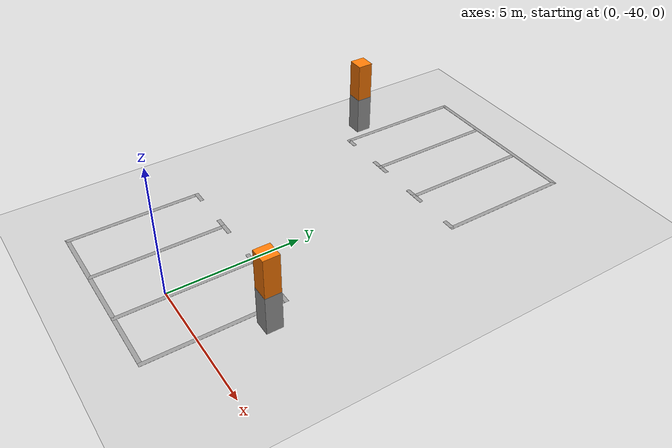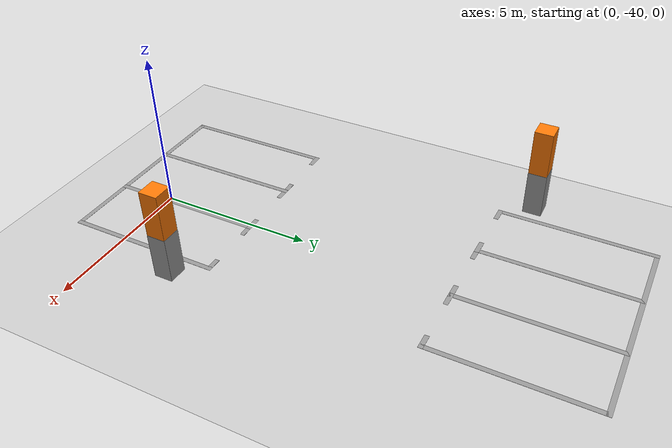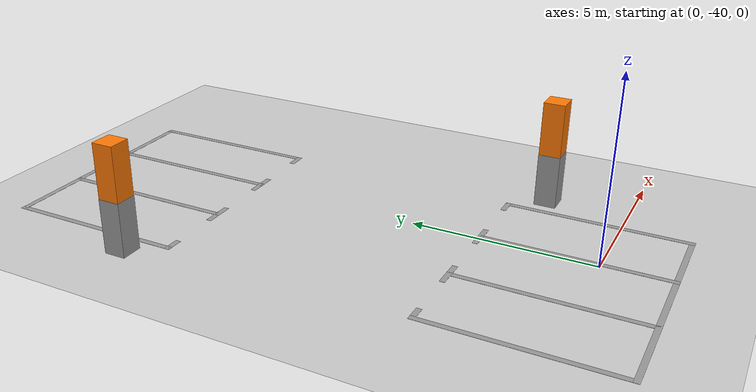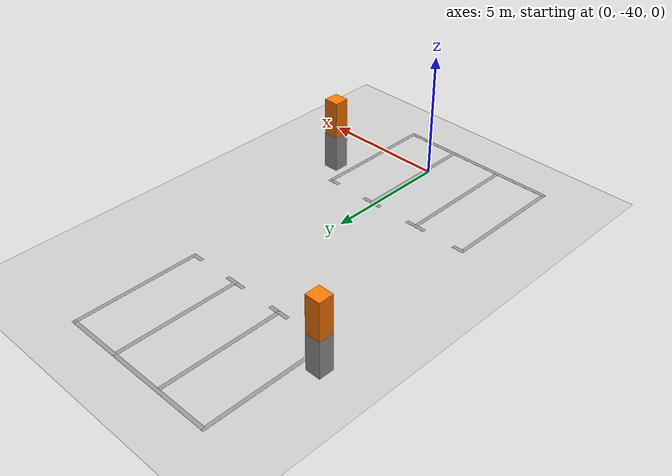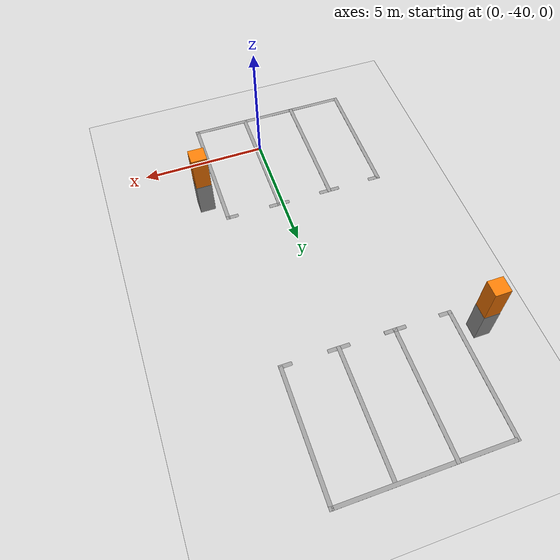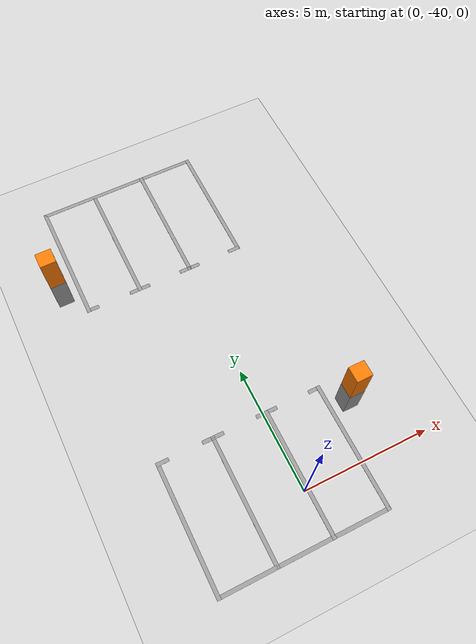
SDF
<sdf version="1.7">
 <world name="default">
  <model name="ground_plane">
   <static>1</static>
   <link name="link">
    <collision name="collision">
     <geometry><plane><normal>0 0 1</normal><size>100 100</size></plane></geometry>
     <surface><friction><ode><mu>100</mu><mu2>50</mu2></ode></friction></surface>
    </collision>
    <visual name="visual">
     <cast_shadows>0</cast_shadows>
     <geometry><plane><normal>0 0 1</normal><size>100 100</size></plane></geometry>
     <material>
      <script><uri>file://media/materials/scripts/gazebo.material</uri><name>Gazebo/Grey</name></script>
     </material>
    </visual>
   </link>
  </model>
  <model name="carport1_3_clone_clone_7">
   <pose>-1.34768 -25.8406 0 0 -0 0</pose>
   <link name="Wall_105">
    <collision name="Wall_105_Collision">
     <geometry><box><size>0.61 0.6 1.5</size></box></geometry>
     <pose>0 0 0.75 0 -0 0</pose>
    </collision>
    <visual name="Wall_105_Visual">
     <pose>0 0 0.75 0 -0 0</pose>
     <geometry><box><size>0.61 0.6 1.5</size></box></geometry>
     <material>
      <script><uri>file://media/materials/scripts/gazebo.material</uri><name>Gazebo/Grey</name></script>
      <ambient>1 1 1 1</ambient>
     </material>
     <meta><layer>0</layer></meta>
    </visual>
    <pose>-3.47407 -3.2865 0 0 -0 0</pose>
   </link>
   <link name="Wall_116">
    <collision name="Wall_116_Collision">
     <geometry><box><size>5.1 0.15 0.005</size></box></geometry>
     <pose>0 0 0.0025 0 -0 0</pose>
    </collision>
    <visual name="Wall_116_Visual">
     <pose>0 0 0.0025 0 -0 0</pose>
     <geometry><box><size>5.1 0.15 0.005</size></box></geometry>
     <material>
      <script><uri>file://media/materials/scripts/gazebo.material</uri><name>Gazebo/Grey</name></script>
      <ambient>1 1 1 1</ambient>
     </material>
     <meta><layer>0</layer></meta>
    </visual>
    <pose>-2.82307 -1.7385 0 0 -0 1.5708</pose>
   </link>
   <link name="Wall_124">
    <collision name="Wall_124_Collision">
     <geometry><box><size>5.1 0.15 0.005</size></box></geometry>
     <pose>0 0 0.0025 0 -0 0</pose>
    </collision>
    <visual name="Wall_124_Visual">
     <pose>0 0 0.0025 0 -0 0</pose>
     <geometry><box><size>5.1 0.15 0.005</size></box></geometry>
     <material>
      <script><uri>file://media/materials/scripts/gazebo.material</uri><name>Gazebo/Grey</name></script>
      <ambient>1 1 1 1</ambient>
     </material>
     <meta><layer>0</layer></meta>
    </visual>
    <pose>3.70393 -1.7305 0 0 -0 1.5708</pose>
   </link>
   <link name="Wall_146">
    <collision name="Wall_146_Collision">
     <geometry><box><size>6.67711 0.15 0.005</size></box></geometry>
     <pose>0 0 0.0025 0 -0 0</pose>
    </collision>
    <visual name="Wall_146_Visual">
     <pose>0 0 0.0025 0 -0 0</pose>
     <geometry><box><size>6.67711 0.15 0.005</size></box></geometry>
     <material>
      <script><uri>file://media/materials/scripts/gazebo.material</uri><name>Gazebo/Grey</name></script>
      <ambient>1 1 1 1</ambient>
     </material>
     <meta><layer>0</layer></meta>
    </visual>
    <pose>0.440428 0.7405 0 0 -0 0.001226</pose>
   </link>
   <link name="Wall_168">
    <collision name="Wall_168_Collision">
     <geometry><box><size>5.1 0.15 0.005</size></box></geometry>
     <pose>0 0 0.0025 0 -0 0</pose>
    </collision>
    <visual name="Wall_168_Visual">
     <pose>0 0 0.0025 0 -0 0</pose>
     <geometry><box><size>5.1 0.15 0.005</size></box></geometry>
     <material>
      <script><uri>file://media/materials/scripts/gazebo.material</uri><name>Gazebo/Grey</name></script>
      <ambient>1 1 1 1</ambient>
     </material>
     <meta><layer>0</layer></meta>
    </visual>
    <pose>-0.64827 -1.73839 0 0 -0 1.57088</pose>
   </link>
   <link name="Wall_173">
    <collision name="Wall_173_Collision">
     <geometry><box><size>5.1 0.15 0.005</size></box></geometry>
     <pose>0 0 0.0025 0 -0 0</pose>
    </collision>
    <visual name="Wall_173_Visual">
     <pose>0 0 0.0025 0 -0 0</pose>
     <geometry><box><size>5.1 0.15 0.005</size></box></geometry>
     <material>
      <script><uri>file://media/materials/scripts/gazebo.material</uri><name>Gazebo/Grey</name></script>
      <ambient>1 1 1 1</ambient>
     </material>
     <meta><layer>0</layer></meta>
    </visual>
    <pose>1.52673 -1.73839 0 0 -0 1.57088</pose>
   </link>
   <link name="Wall_177">
    <collision name="Wall_177_Collision">
     <geometry><box><size>0.6 0.59 3</size></box></geometry>
     <pose>0 0 1.5 0 -0 0</pose>
    </collision>
    <visual name="Wall_177_Visual">
     <pose>0 0 1.5 0 -0 0</pose>
     <geometry><box><size>0.6 0.59 3</size></box></geometry>
     <material>
      <script><uri>file://media/materials/scripts/gazebo.material</uri><name>Gazebo/Grey</name></script>
      <ambient>0.996078 0.47451 0.0196078 1</ambient>
     </material>
     <meta><layer>0</layer></meta>
    </visual>
    <pose>-3.47407 -3.2865 0 0 -0 0</pose>
   </link>
   <link name="Wall_179">
    <collision name="Wall_179_Collision">
     <geometry><box><size>0.5 0.15 0.005</size></box></geometry>
     <pose>0 0 0.0025 0 -0 0</pose>
    </collision>
    <visual name="Wall_179_Visual">
     <pose>0 0 0.0025 0 -0 0</pose>
     <geometry><box><size>0.5 0.15 0.005</size></box></geometry>
     <material>
      <script><uri>file://media/materials/scripts/gazebo.material</uri><name>Gazebo/Grey</name></script>
      <ambient>1 1 1 1</ambient>
     </material>
     <meta><layer>0</layer></meta>
    </visual>
    <pose>-2.64807 -4.2135 0 0 -0 0</pose>
   </link>
   <link name="Wall_181">
    <collision name="Wall_181_Collision">
     <geometry><box><size>0.5 0.15 0.005</size></box></geometry>
     <pose>0 0 0.0025 0 -0 0</pose>
    </collision>
    <visual name="Wall_181_Visual">
     <pose>0 0 0.0025 0 -0 0</pose>
     <geometry><box><size>0.5 0.15 0.005</size></box></geometry>
     <material>
      <script><uri>file://media/materials/scripts/gazebo.material</uri><name>Gazebo/Grey</name></script>
      <ambient>1 1 1 1</ambient>
     </material>
     <meta><layer>0</layer></meta>
    </visual>
    <pose>-0.823072 -4.2135 0 0 -0 3.14159</pose>
   </link>
   <link name="Wall_183">
    <collision name="Wall_183_Collision">
     <geometry><box><size>0.5 0.15 0.005</size></box></geometry>
     <pose>0 0 0.0025 0 -0 0</pose>
    </collision>
    <visual name="Wall_183_Visual">
     <pose>0 0 0.0025 0 -0 0</pose>
     <geometry><box><size>0.5 0.15 0.005</size></box></geometry>
     <material>
      <script><uri>file://media/materials/scripts/gazebo.material</uri><name>Gazebo/Grey</name></script>
      <ambient>1 1 1 1</ambient>
     </material>
     <meta><layer>0</layer></meta>
    </visual>
    <pose>-0.473072 -4.2135 0 0 -0 0</pose>
   </link>
   <link name="Wall_185">
    <collision name="Wall_185_Collision">
     <geometry><box><size>0.5 0.15 0.005</size></box></geometry>
     <pose>0 0 0.0025 0 -0 0</pose>
    </collision>
    <visual name="Wall_185_Visual">
     <pose>0 0 0.0025 0 -0 0</pose>
     <geometry><box><size>0.5 0.15 0.005</size></box></geometry>
     <material>
      <script><uri>file://media/materials/scripts/gazebo.material</uri><name>Gazebo/Grey</name></script>
      <ambient>1 1 1 1</ambient>
     </material>
     <meta><layer>0</layer></meta>
    </visual>
    <pose>1.35193 -4.2135 0 0 -0 3.14159</pose>
   </link>
   <link name="Wall_187">
    <collision name="Wall_187_Collision">
     <geometry><box><size>0.5 0.15 0.005</size></box></geometry>
     <pose>0 0 0.0025 0 -0 0</pose>
    </collision>
    <visual name="Wall_187_Visual">
     <pose>0 0 0.0025 0 -0 0</pose>
     <geometry><box><size>0.5 0.15 0.005</size></box></geometry>
     <material>
      <script><uri>file://media/materials/scripts/gazebo.material</uri><name>Gazebo/Grey</name></script>
      <ambient>1 1 1 1</ambient>
     </material>
     <meta><layer>0</layer></meta>
    </visual>
    <pose>1.70193 -4.2135 0 0 -0 0</pose>
   </link>
   <link name="Wall_189">
    <collision name="Wall_189_Collision">
     <geometry><box><size>0.5 0.15 0.005</size></box></geometry>
     <pose>0 0 0.0025 0 -0 0</pose>
    </collision>
    <visual name="Wall_189_Visual">
     <pose>0 0 0.0025 0 -0 0</pose>
     <geometry><box><size>0.5 0.15 0.005</size></box></geometry>
     <material>
      <script><uri>file://media/materials/scripts/gazebo.material</uri><name>Gazebo/Grey</name></script>
      <ambient>1 1 1 1</ambient>
     </material>
     <meta><layer>0</layer></meta>
    </visual>
    <pose>3.52893 -4.2055 0 0 -0 3.14159</pose>
   </link>
   <static>1</static>
  </model>
  <model name="carport1_4_clone_3_clone_clone_4">
   <pose>-0.50322 -41.0711 0 0 -0 3.14141</pose>
   <link name="Wall_105">
    <collision name="Wall_105_Collision">
     <geometry><box><size>0.61 0.6 1.5</size></box></geometry>
     <pose>0 0 0.75 0 -0 0</pose>
    </collision>
    <visual name="Wall_105_Visual">
     <pose>0 0 0.75 0 -0 0</pose>
     <geometry><box><size>0.61 0.6 1.5</size></box></geometry>
     <material>
      <script><uri>file://media/materials/scripts/gazebo.material</uri><name>Gazebo/Grey</name></script>
      <ambient>1 1 1 1</ambient>
     </material>
     <meta><layer>0</layer></meta>
    </visual>
    <pose>-3.47407 -3.2865 0 0 -0 0</pose>
   </link>
   <link name="Wall_116">
    <collision name="Wall_116_Collision">
     <geometry><box><size>5.1 0.15 0.005</size></box></geometry>
     <pose>0 0 0.0025 0 -0 0</pose>
    </collision>
    <visual name="Wall_116_Visual">
     <pose>0 0 0.0025 0 -0 0</pose>
     <geometry><box><size>5.1 0.15 0.005</size></box></geometry>
     <material>
      <script><uri>file://media/materials/scripts/gazebo.material</uri><name>Gazebo/Grey</name></script>
      <ambient>1 1 1 1</ambient>
     </material>
     <meta><layer>0</layer></meta>
    </visual>
    <pose>-2.82307 -1.7385 0 0 -0 1.5708</pose>
   </link>
   <link name="Wall_124">
    <collision name="Wall_124_Collision">
     <geometry><box><size>5.1 0.15 0.005</size></box></geometry>
     <pose>0 0 0.0025 0 -0 0</pose>
    </collision>
    <visual name="Wall_124_Visual">
     <pose>0 0 0.0025 0 -0 0</pose>
     <geometry><box><size>5.1 0.15 0.005</size></box></geometry>
     <material>
      <script><uri>file://media/materials/scripts/gazebo.material</uri><name>Gazebo/Grey</name></script>
      <ambient>1 1 1 1</ambient>
     </material>
     <meta><layer>0</layer></meta>
    </visual>
    <pose>3.70393 -1.7305 0 0 -0 1.5708</pose>
   </link>
   <link name="Wall_146">
    <collision name="Wall_146_Collision">
     <geometry><box><size>6.67711 0.15 0.005</size></box></geometry>
     <pose>0 0 0.0025 0 -0 0</pose>
    </collision>
    <visual name="Wall_146_Visual">
     <pose>0 0 0.0025 0 -0 0</pose>
     <geometry><box><size>6.67711 0.15 0.005</size></box></geometry>
     <material>
      <script><uri>file://media/materials/scripts/gazebo.material</uri><name>Gazebo/Grey</name></script>
      <ambient>1 1 1 1</ambient>
     </material>
     <meta><layer>0</layer></meta>
    </visual>
    <pose>0.440428 0.7405 0 0 -0 0.001226</pose>
   </link>
   <link name="Wall_168">
    <collision name="Wall_168_Collision">
     <geometry><box><size>5.1 0.15 0.005</size></box></geometry>
     <pose>0 0 0.0025 0 -0 0</pose>
    </collision>
    <visual name="Wall_168_Visual">
     <pose>0 0 0.0025 0 -0 0</pose>
     <geometry><box><size>5.1 0.15 0.005</size></box></geometry>
     <material>
      <script><uri>file://media/materials/scripts/gazebo.material</uri><name>Gazebo/Grey</name></script>
      <ambient>1 1 1 1</ambient>
     </material>
     <meta><layer>0</layer></meta>
    </visual>
    <pose>-0.64827 -1.73839 0 0 -0 1.57088</pose>
   </link>
   <link name="Wall_173">
    <collision name="Wall_173_Collision">
     <geometry><box><size>5.1 0.15 0.005</size></box></geometry>
     <pose>0 0 0.0025 0 -0 0</pose>
    </collision>
    <visual name="Wall_173_Visual">
     <pose>0 0 0.0025 0 -0 0</pose>
     <geometry><box><size>5.1 0.15 0.005</size></box></geometry>
     <material>
      <script><uri>file://media/materials/scripts/gazebo.material</uri><name>Gazebo/Grey</name></script>
      <ambient>1 1 1 1</ambient>
     </material>
     <meta><layer>0</layer></meta>
    </visual>
    <pose>1.52673 -1.73839 0 0 -0 1.57088</pose>
   </link>
   <link name="Wall_177">
    <collision name="Wall_177_Collision">
     <geometry><box><size>0.6 0.59 3</size></box></geometry>
     <pose>0 0 1.5 0 -0 0</pose>
    </collision>
    <visual name="Wall_177_Visual">
     <pose>0 0 1.5 0 -0 0</pose>
     <geometry><box><size>0.6 0.59 3</size></box></geometry>
     <material>
      <script><uri>file://media/materials/scripts/gazebo.material</uri><name>Gazebo/Grey</name></script>
      <ambient>0.996078 0.47451 0.0196078 1</ambient>
     </material>
     <meta><layer>0</layer></meta>
    </visual>
    <pose>-3.47407 -3.2865 0 0 -0 0</pose>
   </link>
   <link name="Wall_179">
    <collision name="Wall_179_Collision">
     <geometry><box><size>0.5 0.15 0.005</size></box></geometry>
     <pose>0 0 0.0025 0 -0 0</pose>
    </collision>
    <visual name="Wall_179_Visual">
     <pose>0 0 0.0025 0 -0 0</pose>
     <geometry><box><size>0.5 0.15 0.005</size></box></geometry>
     <material>
      <script><uri>file://media/materials/scripts/gazebo.material</uri><name>Gazebo/Grey</name></script>
      <ambient>1 1 1 1</ambient>
     </material>
     <meta><layer>0</layer></meta>
    </visual>
    <pose>-2.64807 -4.2135 0 0 -0 0</pose>
   </link>
   <link name="Wall_181">
    <collision name="Wall_181_Collision">
     <geometry><box><size>0.5 0.15 0.005</size></box></geometry>
     <pose>0 0 0.0025 0 -0 0</pose>
    </collision>
    <visual name="Wall_181_Visual">
     <pose>0 0 0.0025 0 -0 0</pose>
     <geometry><box><size>0.5 0.15 0.005</size></box></geometry>
     <material>
      <script><uri>file://media/materials/scripts/gazebo.material</uri><name>Gazebo/Grey</name></script>
      <ambient>1 1 1 1</ambient>
     </material>
     <meta><layer>0</layer></meta>
    </visual>
    <pose>-0.823072 -4.2135 0 0 -0 3.14159</pose>
   </link>
   <link name="Wall_183">
    <collision name="Wall_183_Collision">
     <geometry><box><size>0.5 0.15 0.005</size></box></geometry>
     <pose>0 0 0.0025 0 -0 0</pose>
    </collision>
    <visual name="Wall_183_Visual">
     <pose>0 0 0.0025 0 -0 0</pose>
     <geometry><box><size>0.5 0.15 0.005</size></box></geometry>
     <material>
      <script><uri>file://media/materials/scripts/gazebo.material</uri><name>Gazebo/Grey</name></script>
      <ambient>1 1 1 1</ambient>
     </material>
     <meta><layer>0</layer></meta>
    </visual>
    <pose>-0.473072 -4.2135 0 0 -0 0</pose>
   </link>
   <link name="Wall_185">
    <collision name="Wall_185_Collision">
     <geometry><box><size>0.5 0.15 0.005</size></box></geometry>
     <pose>0 0 0.0025 0 -0 0</pose>
    </collision>
    <visual name="Wall_185_Visual">
     <pose>0 0 0.0025 0 -0 0</pose>
     <geometry><box><size>0.5 0.15 0.005</size></box></geometry>
     <material>
      <script><uri>file://media/materials/scripts/gazebo.material</uri><name>Gazebo/Grey</name></script>
      <ambient>1 1 1 1</ambient>
     </material>
     <meta><layer>0</layer></meta>
    </visual>
    <pose>1.35193 -4.2135 0 0 -0 3.14159</pose>
   </link>
   <link name="Wall_187">
    <collision name="Wall_187_Collision">
     <geometry><box><size>0.5 0.15 0.005</size></box></geometry>
     <pose>0 0 0.0025 0 -0 0</pose>
    </collision>
    <visual name="Wall_187_Visual">
     <pose>0 0 0.0025 0 -0 0</pose>
     <geometry><box><size>0.5 0.15 0.005</size></box></geometry>
     <material>
      <script><uri>file://media/materials/scripts/gazebo.material</uri><name>Gazebo/Grey</name></script>
      <ambient>1 1 1 1</ambient>
     </material>
     <meta><layer>0</layer></meta>
    </visual>
    <pose>1.70193 -4.2135 0 0 -0 0</pose>
   </link>
   <link name="Wall_189">
    <collision name="Wall_189_Collision">
     <geometry><box><size>0.5 0.15 0.005</size></box></geometry>
     <pose>0 0 0.0025 0 -0 0</pose>
    </collision>
    <visual name="Wall_189_Visual">
     <pose>0 0 0.0025 0 -0 0</pose>
     <geometry><box><size>0.5 0.15 0.005</size></box></geometry>
     <material>
      <script><uri>file://media/materials/scripts/gazebo.material</uri><name>Gazebo/Grey</name></script>
      <ambient>1 1 1 1</ambient>
     </material>
     <meta><layer>0</layer></meta>
    </visual>
    <pose>3.52893 -4.2055 0 0 -0 3.14159</pose>
   </link>
   <static>1</static>
  </model>
 </world>
</sdf>
